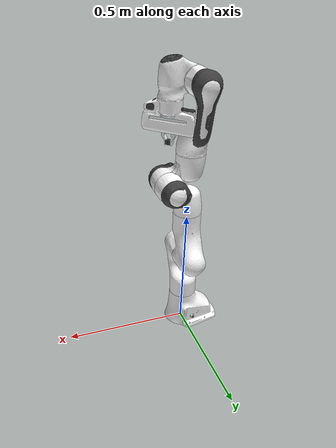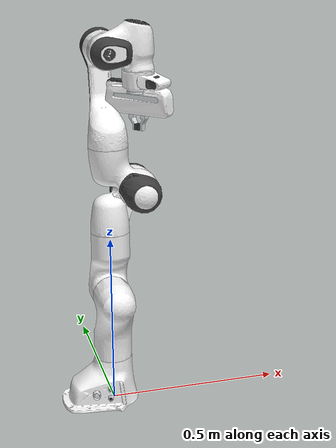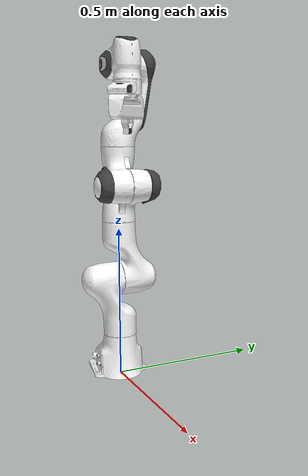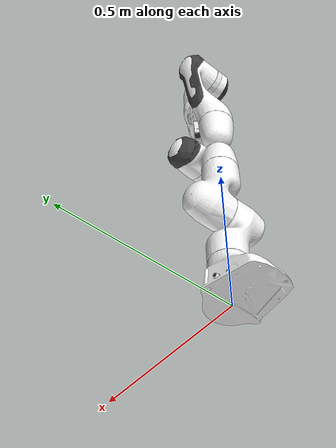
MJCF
<mujoco model="panda">
  <compiler angle="radian" meshdir="meshes" autolimits="true"/>

  <default>
    <default class="panda">
      <material specular="0.5" shininess="0.25"/>
      <joint armature="0.1" damping="1" axis="0 0 1" range="-2.8973 2.8973"/>
      <general dyntype="none" biastype="affine" ctrlrange="-2.8973 2.8973" forcerange="-87 87"/>
      <position forcerange="-100 100"/>
      <default class="finger">
        <joint axis="0 1 0" type="slide" range="0 0.04"/>
      </default>

      <default class="visual">
        <geom type="mesh" contype="0" conaffinity="0" group="2"/>
      </default>
      <default class="collision">
        <geom group="3" type="mesh" contype="0" conaffinity="0"/>
        <default class="primitive_collision">
          <geom group="3" type="box" contype="0" conaffinity="0"
           condim="3" solimp="0.99 0.995 0.01" solref="0.01 1" friction="1 0.005 0.0001"/>
          <default class="fingertip_pad_collision_1">
            <geom type="box" size="0.011 0.0075 0.01" pos="0 0.0185 0.011"/>
          </default>
          <default class="fingertip_pad_collision_2">
            <geom type="box" size="0.011 0.0044 0.0019" pos="0 0.0068 0.0022"/>
          </default>
          <default class="fingertip_pad_collision_3">
            <geom type="box" size="0.00875 0.0035 0.01175" pos="0 0.0159 0.02835" quat="1 0.25 0 0"/>
          </default>
          <default class="fingertip_pad_collision_4">
            <geom type="box" size="0.00875 0.0076 0.00825" pos="0 0.00758 0.04525" conaffinity="3"/>
          </default>
        </default>
      </default>
    </default>
  </default>

  <asset>
    <material class="panda" name="white" rgba="1 1 1 1"/>
    <material class="panda" name="off_white" rgba="0.901961 0.921569 0.929412 1"/>
    <material class="panda" name="black" rgba="0.25 0.25 0.25 1"/>
    <material class="panda" name="green" rgba="0 1 0 1"/>
    <material class="panda" name="light_blue" rgba="0.039216 0.541176 0.780392 1"/>

    <!-- Collision meshes -->
    <mesh name="link0_c" file="link0_hull.stl"/>
    <mesh name="link1_c" file="link1_hull.stl"/>
    <mesh name="link2_c" file="link2_hull.stl"/>
    <mesh name="link3_c" file="link3_hull.stl"/>
    <mesh name="link4_c" file="link4_hull.stl"/>
    <mesh name="link5_c0" file="link5_collision_0_hull.stl"/>
    <mesh name="link5_c1" file="link5_collision_1_hull.stl"/>
    <mesh name="link5_c2" file="link5_collision_2_hull.stl"/>
    <mesh name="link6_c" file="link6_hull.stl"/>
    <mesh name="link7_c" file="link7_hull.stl"/>
    <mesh name="hand_c" file="hand_hull.stl"/>

    <!-- Visual meshes -->
    <mesh file="link0_0.stl"/>
    <mesh file="link0_1.stl"/>
    <mesh file="link0_2.stl"/>
    <mesh file="link0_3.stl"/>
    <mesh file="link0_4.stl"/>
    <mesh file="link0_5.stl"/>
    <mesh file="link0_7.stl"/>
    <mesh file="link0_8.stl"/>
    <mesh file="link0_9.stl"/>
    <mesh file="link0_10.stl"/>
    <mesh file="link0_11.stl"/>
    <mesh file="link1.stl"/>
    <mesh file="link2.stl"/>
    <mesh file="link3_0.stl"/>
    <mesh file="link3_1.stl"/>
    <mesh file="link3_2.stl"/>
    <mesh file="link3_3.stl"/>
    <mesh file="link4_0.stl"/>
    <mesh file="link4_1.stl"/>
    <mesh file="link4_2.stl"/>
    <mesh file="link4_3.stl"/>
    <mesh file="link5_0.stl"/>
    <mesh file="link5_1.stl"/>
    <mesh file="link5_2.stl"/>
    <mesh file="link6_0.stl"/>
    <mesh file="link6_1.stl"/>
    <mesh file="link6_2.stl"/>
    <mesh file="link6_3.stl"/>
    <mesh file="link6_4.stl"/>
    <mesh file="link6_5.stl"/>
    <mesh file="link6_6.stl"/>
    <mesh file="link6_7.stl"/>
    <mesh file="link6_8.stl"/>
    <mesh file="link6_9.stl"/>
    <mesh file="link6_10.stl"/>
    <mesh file="link6_11.stl"/>
    <mesh file="link6_12.stl"/>
    <mesh file="link6_13.stl"/>
    <mesh file="link6_14.stl"/>
    <mesh file="link6_15.stl"/>
    <mesh file="link6_16.stl"/>
    <mesh file="link7_0.stl"/>
    <mesh file="link7_1.stl"/>
    <mesh file="link7_2.stl"/>
    <mesh file="link7_3.stl"/>
    <mesh file="link7_4.stl"/>
    <mesh file="link7_5.stl"/>
    <mesh file="link7_6.stl"/>
    <mesh file="link7_7.stl"/>
    <mesh file="hand_0.stl"/>
    <mesh file="hand_1.stl"/>
    <mesh file="hand_2.stl"/>
    <mesh file="hand_3.stl"/>
    <mesh file="hand_4.stl"/>
    <mesh file="finger_0.stl"/>
    <mesh file="finger_1.stl"/>
  </asset>

  <worldbody>
    <light name="top" pos="0 0 2" mode="trackcom"/>
    <body name="link0" childclass="panda">
      <inertial mass="0.629769" pos="-0.041018 -0.00014 0.049974"
        fullinertia="0.00315 0.00388 0.004285 8.2904e-7 0.00015 8.2299e-6"/>
      <geom mesh="link0_0" material="off_white" class="visual"/>
      <geom mesh="link0_1" material="black" class="visual"/>
      <geom mesh="link0_2" material="off_white" class="visual"/>
      <geom mesh="link0_3" material="black" class="visual"/>
      <geom mesh="link0_4" material="off_white" class="visual"/>
      <geom mesh="link0_5" material="black" class="visual"/>
      <geom mesh="link0_7" material="white" class="visual"/>
      <geom mesh="link0_8" material="white" class="visual"/>
      <geom mesh="link0_9" material="black" class="visual"/>
      <geom mesh="link0_10" material="off_white" class="visual"/>
      <geom mesh="link0_11" material="white" class="visual"/>
      <geom mesh="link0_c" class="collision"/>
      <body name="link1" pos="0 0 0.333">
        <inertial mass="4.970684" pos="0.003875 0.002081 -0.04762"
          fullinertia="0.70337 0.70661 0.0091170 -0.00013900 0.0067720 0.019169"/>
        <joint name="joint1" damping="40"/>
        <geom material="white" mesh="link1" class="visual"/>
        <geom mesh="link1_c" class="collision"/>
        <body name="link2" quat="1 -1 0 0">
          <inertial mass="0.646926" pos="-0.003141 -0.02872 0.003495"
            fullinertia="0.0079620 2.8110e-2 2.5995e-2 -3.925e-3 1.0254e-2 7.04e-4"/>
          <joint name="joint2" range="-1.7628 1.7628" damping="40"/>
          <geom material="white" mesh="link2" class="visual"/>
          <geom mesh="link2_c" class="collision"/>
          <body name="link3" pos="0 -0.316 0" quat="1 1 0 0">
            <joint name="joint3" damping="40"/>
            <inertial mass="3.228604" pos="2.7518e-2 3.9252e-2 -6.6502e-2"
              fullinertia="3.7242e-2 3.6155e-2 1.083e-2 -4.761e-3 -1.1396e-2 -1.2805e-2"/>
            <geom mesh="link3_0" material="white" class="visual"/>
            <geom mesh="link3_1" material="white" class="visual"/>
            <geom mesh="link3_2" material="white" class="visual"/>
            <geom mesh="link3_3" material="black" class="visual"/>
            <geom mesh="link3_c" class="collision"/>
            <body name="link4" pos="0.0825 0 0" quat="1 1 0 0">
              <inertial mass="3.587895" pos="-5.317e-2 1.04419e-1 2.7454e-2"
                fullinertia="2.5853e-2 1.9552e-2 2.8323e-2 7.796e-3 -1.332e-3 8.641e-3"/>
              <joint name="joint4" range="-3.0718 -0.0698" damping="40"/>
              <geom mesh="link4_0" material="white" class="visual"/>
              <geom mesh="link4_1" material="white" class="visual"/>
              <geom mesh="link4_2" material="black" class="visual"/>
              <geom mesh="link4_3" material="white" class="visual"/>
              <geom mesh="link4_c" class="collision"/>
              <body name="link5" pos="-0.0825 0.384 0" quat="1 -1 0 0">
                <inertial mass="1.225946" pos="-1.1953e-2 4.1065e-2 -3.8437e-2"
                  fullinertia="3.5549e-2 2.9474e-2 8.627e-3 -2.117e-3 -4.037e-3 2.29e-4"/>
                <joint name="joint5" damping="2"/>
                <geom mesh="link5_0" material="black" class="visual"/>
                <geom mesh="link5_1" material="white" class="visual"/>
                <geom mesh="link5_2" material="white" class="visual"/>
                <geom mesh="link5_c0" class="collision"/>
                <geom mesh="link5_c1" class="collision"/>
                <geom mesh="link5_c2" class="collision"/>
                <body name="link6" quat="1 1 0 0">
                  <inertial mass="1.666555" pos="6.0149e-2 -1.4117e-2 -1.0517e-2"
                    fullinertia="1.964e-3 4.354e-3 5.433e-3 1.09e-4 -1.158e-3 3.41e-4"/>
                  <joint name="joint6" range="-0.0175 3.7525" damping="2"/>
                  <geom mesh="link6_0" material="off_white" class="visual"/>
                  <geom mesh="link6_1" material="white" class="visual"/>
                  <geom mesh="link6_2" material="black" class="visual"/>
                  <geom mesh="link6_3" material="white" class="visual"/>
                  <geom mesh="link6_4" material="white" class="visual"/>
                  <geom mesh="link6_5" material="white" class="visual"/>
                  <geom mesh="link6_6" material="white" class="visual"/>
                  <geom mesh="link6_7" material="light_blue" class="visual"/>
                  <geom mesh="link6_8" material="light_blue" class="visual"/>
                  <geom mesh="link6_9" material="black" class="visual"/>
                  <geom mesh="link6_10" material="black" class="visual"/>
                  <geom mesh="link6_11" material="white" class="visual"/>
                  <geom mesh="link6_12" material="green" class="visual"/>
                  <geom mesh="link6_13" material="white" class="visual"/>
                  <geom mesh="link6_14" material="black" class="visual"/>
                  <geom mesh="link6_15" material="black" class="visual"/>
                  <geom mesh="link6_16" material="white" class="visual"/>
                  <geom mesh="link6_c" class="collision"/>
                  <body name="link7" pos="0.088 0 0" quat="1 1 0 0">
                    <inertial mass="7.35522e-01" pos="1.0517e-2 -4.252e-3 6.1597e-2"
                      fullinertia="1.2516e-2 1.0027e-2 4.815e-3 -4.28e-4 -1.196e-3 -7.41e-4"/>
                    <joint name="joint7" damping="2"/>
                    <geom mesh="link7_0" material="white" class="visual"/>
                    <geom mesh="link7_1" material="black" class="visual"/>
                    <geom mesh="link7_2" material="black" class="visual"/>
                    <geom mesh="link7_3" material="black" class="visual"/>
                    <geom mesh="link7_4" material="black" class="visual"/>
                    <geom mesh="link7_5" material="black" class="visual"/>
                    <geom mesh="link7_6" material="black" class="visual"/>
                    <geom mesh="link7_7" material="white" class="visual"/>
                    <geom mesh="link7_c" class="collision"/>
                    <body name="hand" pos="0 0 0.107" quat="0.9238795 0 0 -0.3826834">
                      <inertial mass="0.73" pos="-0.01 0 0.03" diaginertia="0.001 0.0025 0.0017"/>
                      <geom mesh="hand_0" material="off_white" class="visual"/>
                      <geom mesh="hand_1" material="black" class="visual"/>
                      <geom mesh="hand_2" material="black" class="visual"/>
                      <geom mesh="hand_3" material="white" class="visual"/>
                      <geom mesh="hand_4" material="off_white" class="visual"/>
                      <geom mesh="hand_c" class="collision"/>
                      <geom name="hand_capsule" type="capsule"
                       class="collision" conaffinity="1" size="0.04 0.06"
                       quat="1 1 0 0" pos="0 0 0.03"/>
                      <site name="gripper" pos="0 0 0.1"/>
                      <body name="left_finger" pos="0 0 0.0584">
                        <inertial mass="0.015" pos="0 0 0" diaginertia="2.375e-6 2.375e-6 7.5e-7"/>
                        <joint name="finger_joint1" class="finger" damping="10"/>
                        <geom mesh="finger_0" material="off_white" class="visual"/>
                        <geom mesh="finger_1" material="black" class="visual"/>
                        <geom mesh="finger_0" class="collision"/>
                        <geom class="fingertip_pad_collision_1"/>
                        <geom class="fingertip_pad_collision_2"/>
                        <geom class="fingertip_pad_collision_3"/>
                        <geom name="left_finger_pad" class="fingertip_pad_collision_4"/>
                      </body>
                      <body name="right_finger" pos="0 0 0.0584" quat="0 0 0 1">
                        <inertial mass="0.015" pos="0 0 0" diaginertia="2.375e-6 2.375e-6 7.5e-7"/>
                        <joint name="finger_joint2" class="finger" damping="10"/>
                        <geom mesh="finger_0" material="off_white" class="visual"/>
                        <geom mesh="finger_1" material="black" class="visual"/>
                        <geom mesh="finger_0" class="collision"/>
                        <geom class="fingertip_pad_collision_1"/>
                        <geom class="fingertip_pad_collision_2"/>
                        <geom class="fingertip_pad_collision_3"/>
                        <geom name="right_finger_pad" class="fingertip_pad_collision_4"/>
                      </body>
                    </body>
                  </body>
                </body>
              </body>
            </body>
          </body>
        </body>
      </body>
    </body>
  </worldbody>

  <equality>
    <joint joint1="finger_joint1" joint2="finger_joint2" solimp="0.95 0.99 0.001" solref="0.005 1"/>
  </equality>

  <actuator>
    <position class="panda" name="actuator1" joint="joint1" kp="1000" kv="20"
     ctrlrange="-2.8973 2.8973"/>
    <position class="panda" name="actuator2" joint="joint2" kp="1000" kv="20"
     ctrlrange="-1.7628 1.7628"/>
    <position class="panda" name="actuator3" joint="joint3" kp="750" kv="4"
     ctrlrange="-2.8973 2.8973"/>
    <position class="panda" name="actuator4" joint="joint4" kp="750" kv="4"
     ctrlrange="-3.0718 -0.0698"/>
    <position class="panda" name="actuator5" joint="joint5" kp="300" kv="2"
     forcerange="-12 12" ctrlrange="-2.8973 2.8973"/>
    <position class="panda" name="actuator6" joint="joint6" kp="300" kv="2" forcerange="-12 12"
      ctrlrange="-0.0175 3.7525"/>
    <position class="panda" name="actuator7" joint="joint7" kp="300" kv="2" forcerange="-12 12"/>
    <general class="panda" name="actuator8" joint="finger_joint1"
     ctrlrange="0 0.04" gainprm="350 0 0" biasprm="0 -350 -10" forcerange="-200 200"/>
  </actuator>

  <contact>
    <exclude body1="link0" body2="link1"/>
  </contact>
</mujoco>
